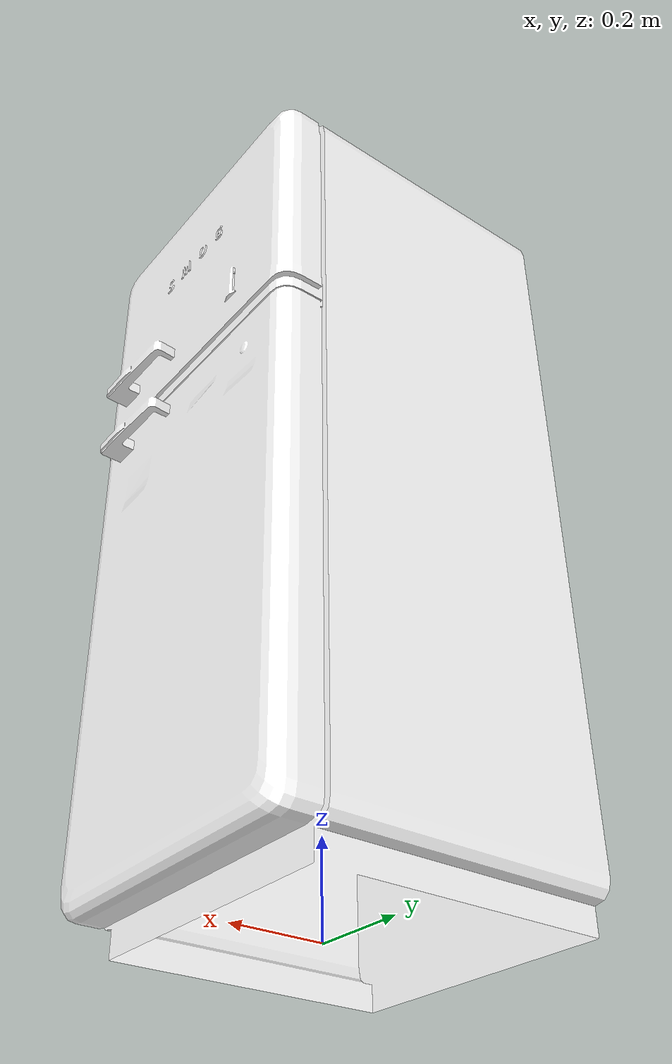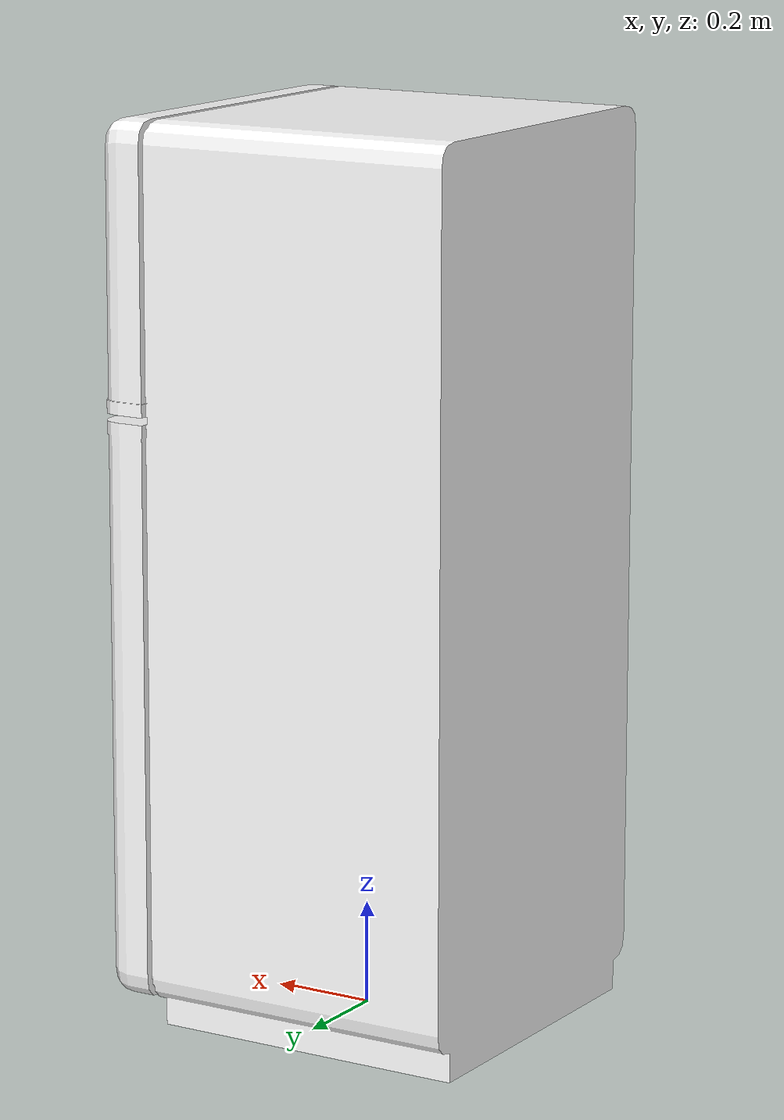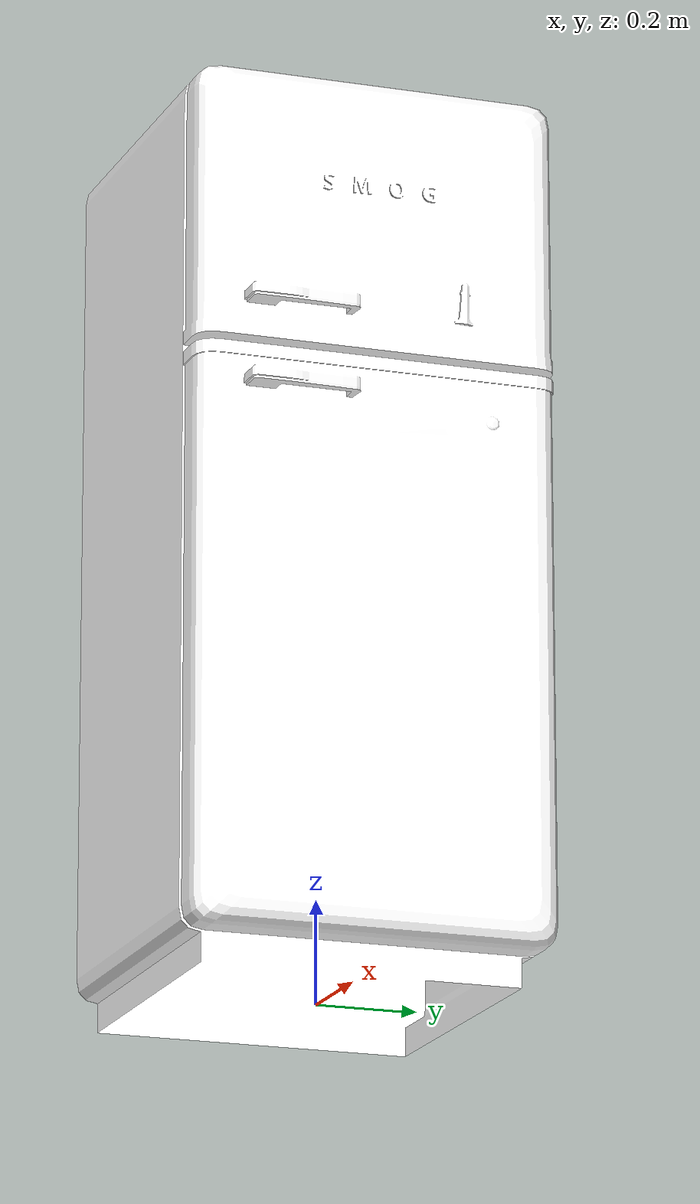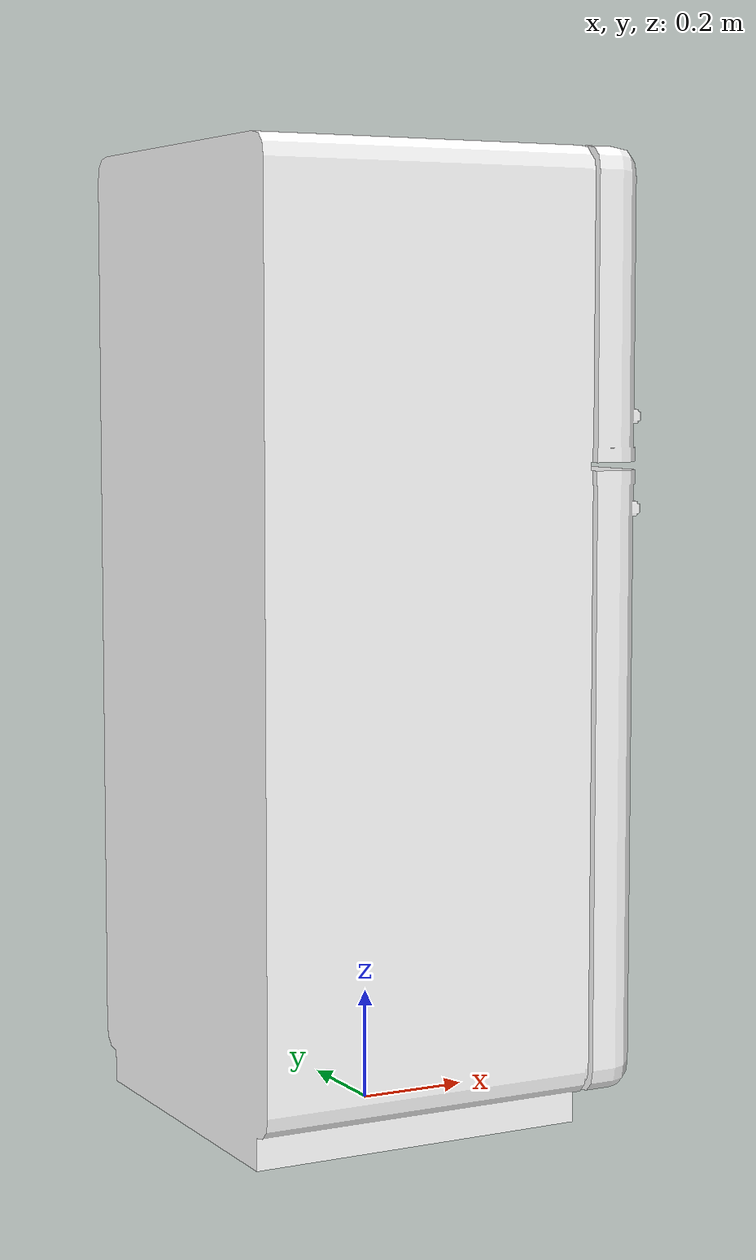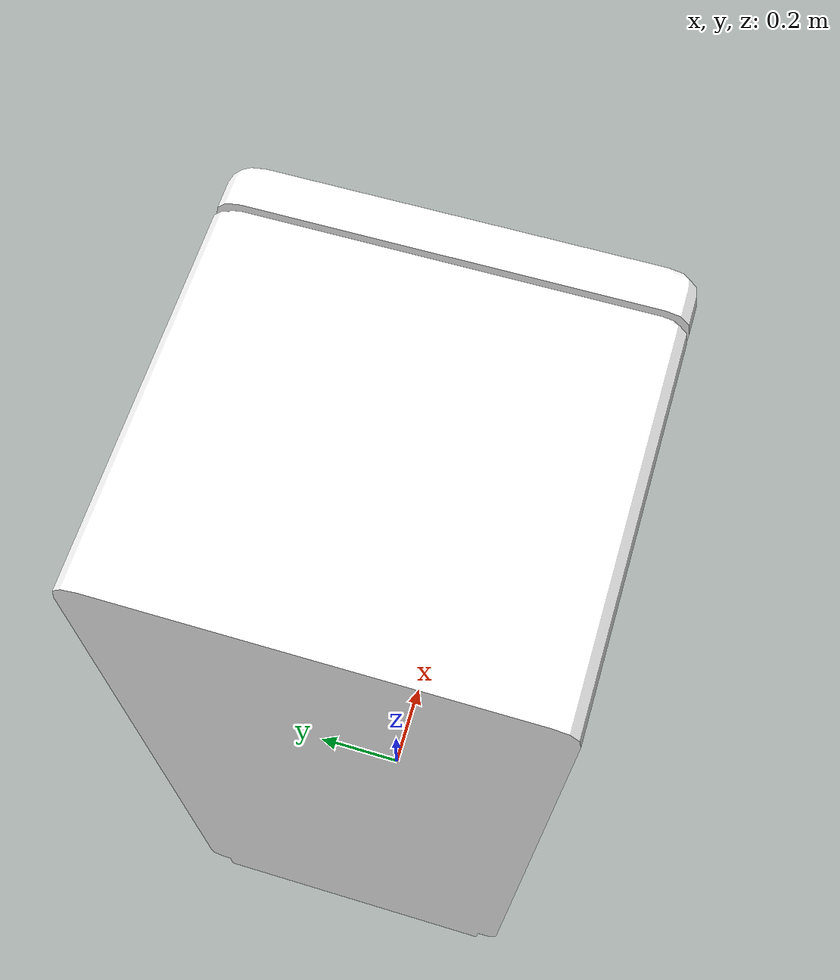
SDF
<?xml version="1.0" encoding="UTF-8"?>
<sdf version="1.6">
  <model name="Fridge">
    <static>true</static>
    <link name="base_link">
      <visual name="visual">
        <geometry>
          <mesh>
            <uri>meshes/fridge.dae</uri>
          </mesh>
        </geometry>
        <material>
          <diffuse>1.0 1.0 1.0</diffuse>
          <specular>1.0 1.0 1.0</specular>
          <pbr>
            <metal>
              <albedo_map>materials/textures/Fridge_Albedo.jpg</albedo_map>
              <normal_map>materials/textures/Fridge_Normal.png</normal_map>
              <roughness_map>materials/textures/Fridge_Roughness.jpg</roughness_map>
              <metalness_map>materials/textures/Fridge_Metalness.jpg</metalness_map>
            </metal>
          </pbr>
        </material>
      </visual>
      <collision name="Box001">
        <pose>0.0 0.0 0.867923 0.0 0.0 0.0</pose>
        <geometry>
          <box>
            <size>0.734673 0.7239 1.73585</size>
          </box>
        </geometry>
      </collision>
    </link>
  </model>
</sdf>
